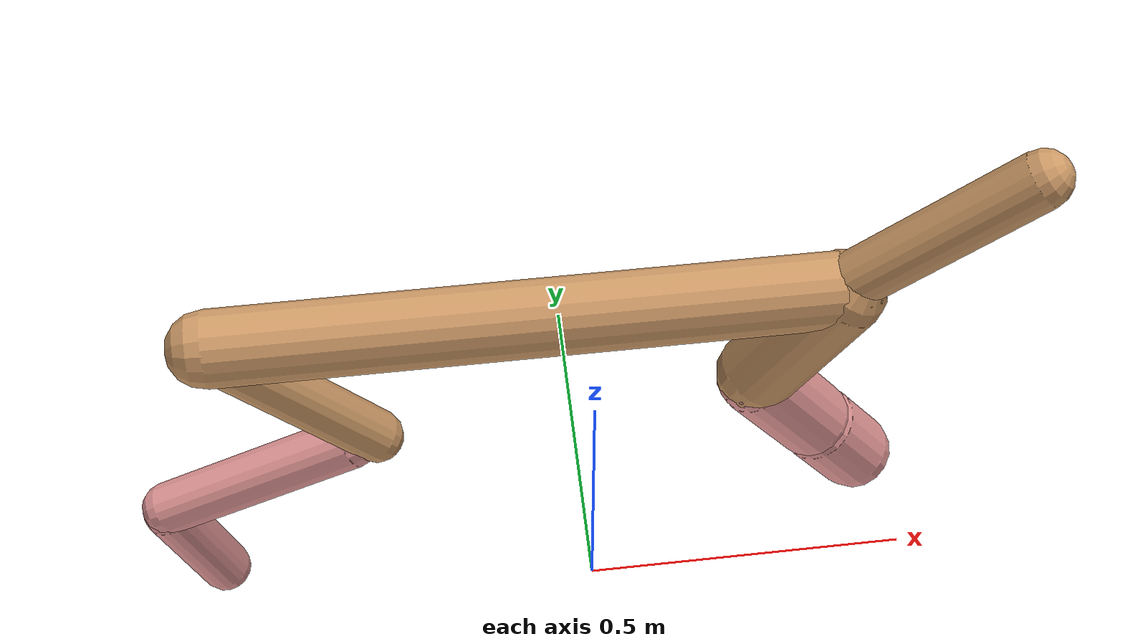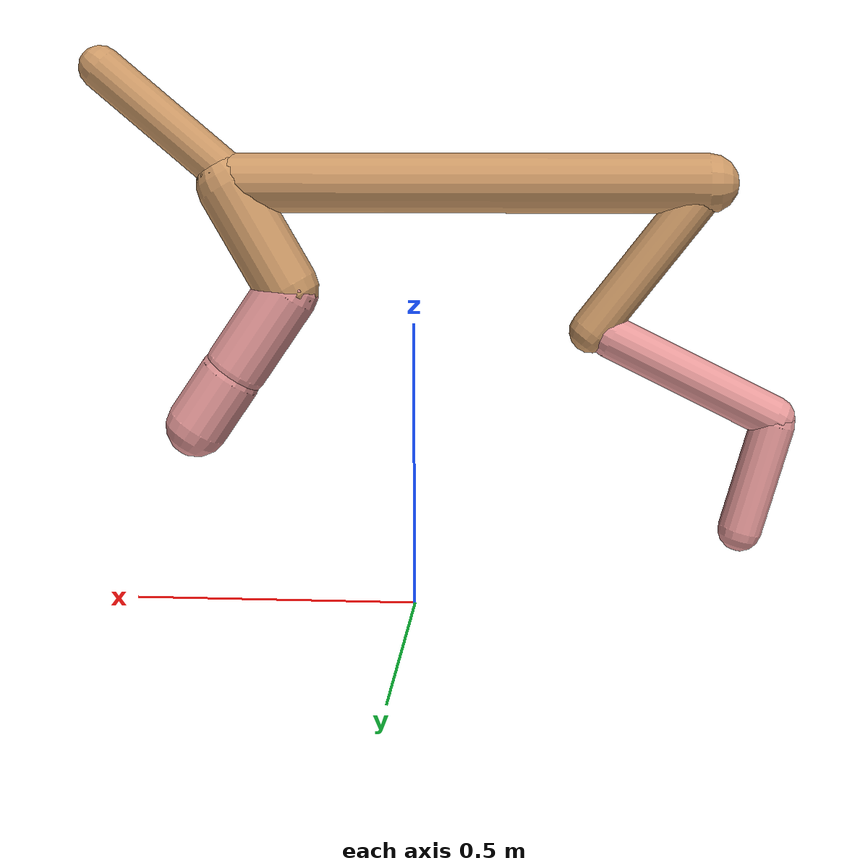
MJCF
<mujoco model="cheetah">
  <compiler angle="radian" coordinate="local" inertiafromgeom="true" settotalmass="14" />
  <default>
    <joint armature=".1" damping=".01" limited="true" solimplimit="0 .8 .03" solreflimit=".02 1" stiffness="8" />
    <geom conaffinity="0" condim="3" contype="1" friction="0.8 .1 .1" rgba="0.8 0.6 .4 1" solimp="0.0 0.8 0.01" solref="0.02 1" />
    <motor ctrllimited="true" ctrlrange="-1 1" />
  </default>
  <size nstack="300000" nuser_geom="1" />
  <option gravity="0 0 -9.81" timestep="0.01" />
  <worldbody>
    <body name="torso" pos="0.0 0.0 0.7431825002449963">
      <joint armature="0" axis="1 0 0" damping="0" limited="false" name="ignorex" pos="0 0 0" stiffness="0" type="slide" />
      <joint armature="0" axis="0 0 1" damping="0" limited="false" name="ignorez" pos="0 0 0" stiffness="0" type="slide" />
      <joint armature="0" axis="0 1 0" damping="0" limited="false" name="ignorey" pos="0 0 0" stiffness="0" type="hinge" />
      <geom fromto="-0.5 0.0 0.0 0.3267959729828495 0.0 0.0" name="torso" size="0.05100946888127124" type="capsule" />
      <geom axisangle="0 1 0 .87" name="head" pos="0.42679597298284955 0.0 0.1" size="0.03852014162963626 0.15" type="capsule" />

      <body name="bthigh" pos="-.5 0 0">
        <joint axis="0 1 0" damping="6" name="bthigh" pos="0 0 0" range="-.52 1.05" stiffness="240" type="hinge" />
        <geom axisangle="0 1 0 -3.8" name="bthigh" pos="0.10323532295471735 0.0 -0.13420591984113256" size="0.03781435587301565 0.15030632418264783" type="capsule" />
        <body name="bshin" pos="0.1664706459094347 0.0 -0.2584118396822651">
          <joint axis="0 1 0" damping="4.5" name="bshin" pos="0 0 0" range="-.785 .785" stiffness="180" type="hinge" />
          <geom axisangle="0 1 0 -2.03" name="bshin" pos="-0.1449097799654007 0.0 -0.07245488998270035" rgba="0.9 0.6 0.6 1" size="0.03781435587301565 0.15548930087860122" type="capsule" />
          <body name="bfoot" pos="-0.2898195599308014 0.0 -0.1449097799654007">
            <joint axis="0 1 0" damping="3" name="bfoot" pos="0 0 0" range="-.4 .785" stiffness="120" type="hinge" />
            <geom axisangle="0 1 0 -.27" name="bfoot" pos="0.03101640458470533 0.0 -0.10028637482388057" rgba="0.9 0.6 0.6 1" size="0.03781435587301565 0.09743996188392343" type="capsule" />
            <inertial mass="10" />
          </body>
        </body>
      </body>
      <body name="fthigh" pos="0.32679597298284957 0.0 0.0">
        <joint axis="0 1 0" damping="4.5" name="fthigh" pos="0 0 0" range="-1.5 0.8" stiffness="180" type="hinge" />
        <geom axisangle="0 1 0 .52" name="fthigh" pos="-0.05434835575449589 0.0 -0.09316860986485008" size="0.055886054436177265 0.10193720128236282" type="capsule" />
        <body name="fshin" pos="-0.10869671150899178 0.0 -0.18633721972970016">
          <joint axis="0 1 0" damping="3" name="fshin" pos="0 0 0" range="-1.2 1.1" stiffness="120" type="hinge" />
          <geom axisangle="0 1 0 -.6" name="fshin" pos="0.05050511748973388 0.0 -0.06993016267809307" rgba="0.9 0.6 0.6 1" size="0.055886054436177265 0.08124318297692074" type="capsule" />
          <body name="ffoot" pos="0.10101023497946776 0.0 -0.13986032535618614">
            <joint axis="0 1 0" damping="1.5" name="ffoot" pos="0 0 0" range="-3.1 -0.3" stiffness="60" type="hinge" />
            <geom axisangle="0 1 0 -.6" name="ffoot" pos="0.03615923988736551 0.0 -0.05624770649145747" rgba="0.9 0.6 0.6 1" size="0.055886054436177265 0.053651158569664646" type="capsule" />
            <inertial mass="10" />
          </body>
        </body>
      </body>
    </body>
  </worldbody>
  <actuator>
    <motor gear="120" joint="bthigh" name="bthigh" />
    <motor gear="90" joint="bshin" name="bshin" />
    <motor gear="60" joint="bfoot" name="bfoot" />
    <motor gear="120" joint="fthigh" name="fthigh" />
    <motor gear="60" joint="fshin" name="fshin" />
    <motor gear="30" joint="ffoot" name="ffoot" />
  </actuator>
</mujoco>
